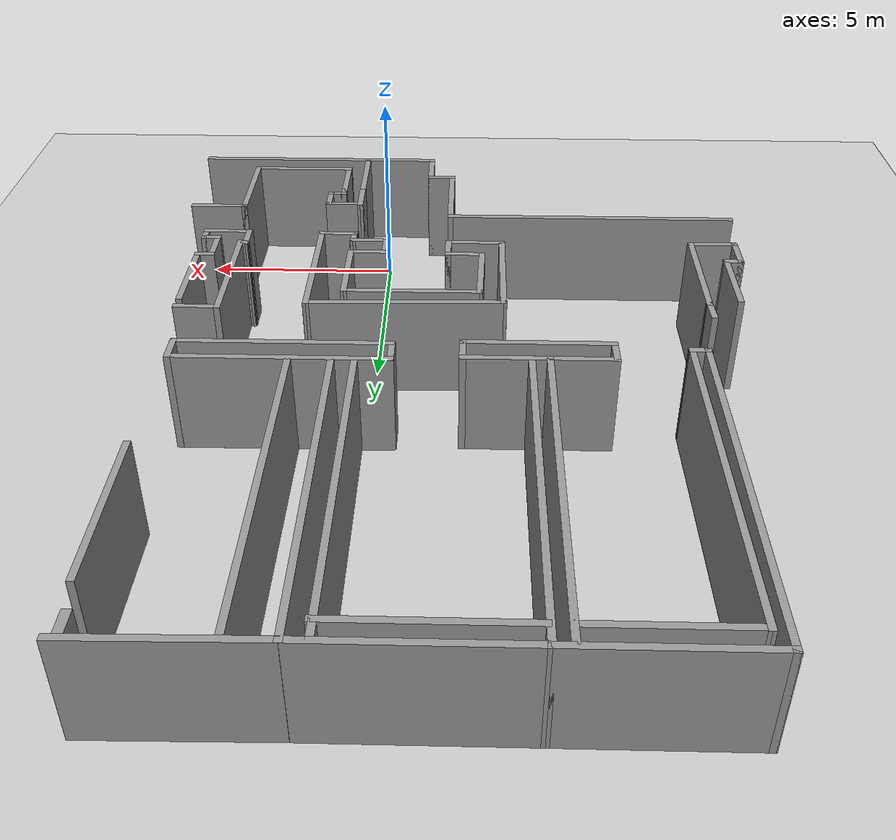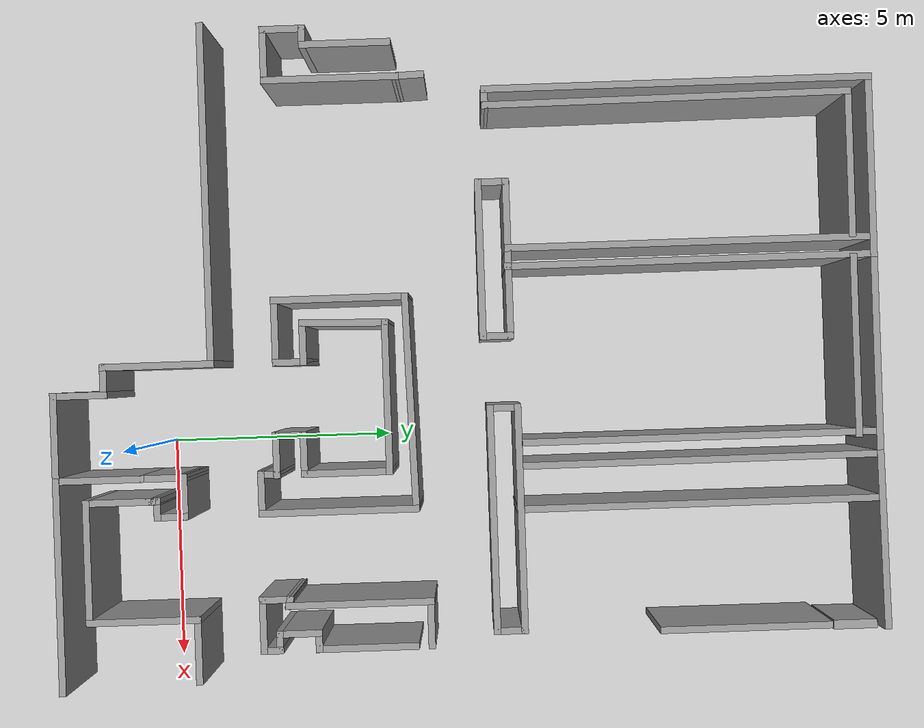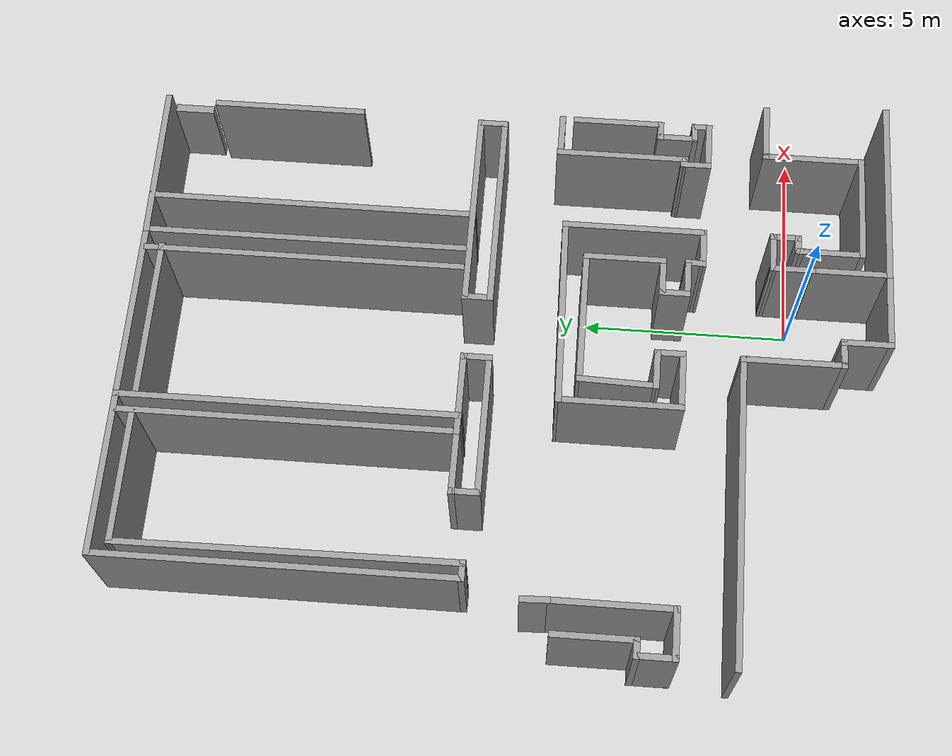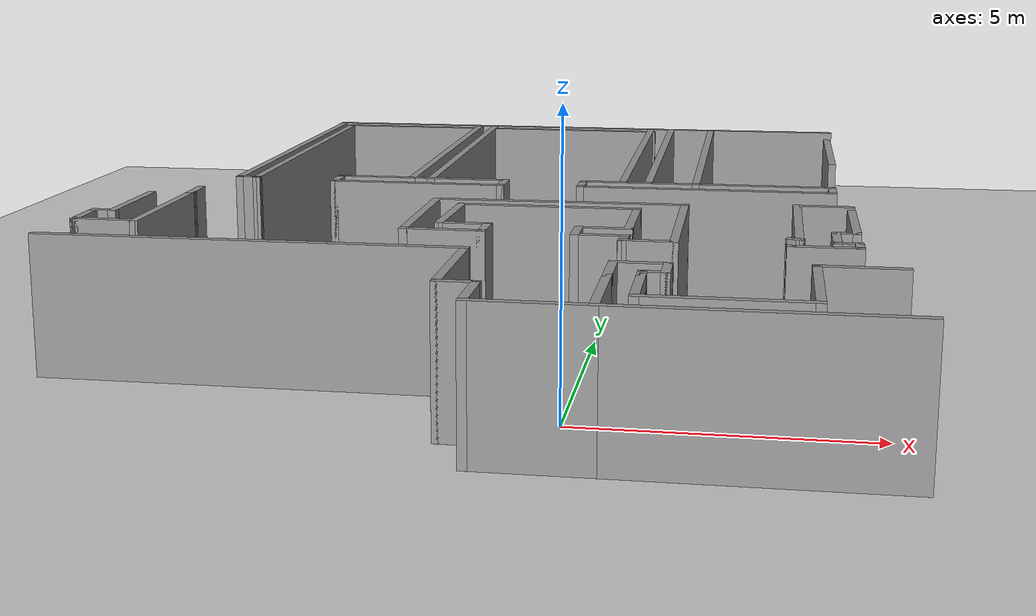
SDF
<sdf version="1.7">
 <world name="default">
  <model name="ground_plane">
   <static>1</static>
   <link name="link">
    <collision name="collision">
     <geometry><plane><normal>0 0 1</normal><size>100 100</size></plane></geometry>
     <surface><friction><ode><mu>100</mu><mu2>50</mu2></ode></friction></surface>
    </collision>
    <visual name="visual">
     <geometry><plane><normal>0 0 1</normal><size>100 100</size></plane></geometry>
     <material>
      <script><uri>file://media/materials/scripts/gazebo.material</uri><name>Gazebo/Grey</name></script>
     </material>
    </visual>
    <velocity_decay><linear>0</linear><angular>0</angular></velocity_decay>
   </link>
  </model>
  <model name="HandMade">
   <pose>-0.902363 5.97176 0 0 -0 0</pose>
   <link name="Door_0">
    <collision name="Door_0_Collision">
     <geometry><box><size>0.957707 0.2 2</size></box></geometry>
     <pose>0 0 1 0 -0 0</pose>
    </collision>
    <visual name="Door_0_Visual">
     <pose>0 0 1 0 -0 0</pose>
     <geometry><box><size>0.957707 0.2 2</size></box></geometry>
     <material>
      <script><uri>file://media/materials/scripts/gazebo.material</uri><name>Gazebo/Grey</name></script>
     </material>
    </visual>
    <pose>5.38126 9.2915 0 0 -0 1.56978</pose>
   </link>
   <link name="Wall_101">
    <collision name="Wall_101_Collision">
     <geometry><box><size>3.90502 0.15 2.5</size></box></geometry>
     <pose>0 0 1.25 0 -0 0</pose>
    </collision>
    <visual name="Wall_101_Visual">
     <pose>0 0 1.25 0 -0 0</pose>
     <geometry><box><size>3.90502 0.15 2.5</size></box></geometry>
     <material>
      <script><uri>file://media/materials/scripts/gazebo.material</uri><name>Gazebo/Grey</name></script>
      <ambient>1 1 1 1</ambient>
     </material>
     <meta><layer>0</layer></meta>
    </visual>
    <pose>3.47392 9.84556 0 0 -0 0.011884</pose>
   </link>
   <link name="Wall_103">
    <collision name="Wall_103_Collision">
     <geometry><box><size>0.5 0.15 2.5</size></box></geometry>
     <pose>0 0 1.25 0 -0 0</pose>
    </collision>
    <visual name="Wall_103_Visual">
     <pose>0 0 1.25 0 -0 0</pose>
     <geometry><box><size>0.5 0.15 2.5</size></box></geometry>
     <material>
      <script><uri>file://media/materials/scripts/gazebo.material</uri><name>Gazebo/Grey</name></script>
      <ambient>1 1 1 1</ambient>
     </material>
     <meta><layer>0</layer></meta>
    </visual>
    <pose>-6.42846 1.47324 0 0 -0 0</pose>
   </link>
   <link name="Wall_104">
    <collision name="Wall_104_Collision">
     <geometry><box><size>8.05295 0.15 2.5</size></box></geometry>
     <pose>0 0 1.25 0 -0 0</pose>
    </collision>
    <visual name="Wall_104_Visual">
     <pose>0 0 1.25 0 -0 0</pose>
     <geometry><box><size>8.05295 0.15 2.5</size></box></geometry>
     <material>
      <script><uri>file://media/materials/scripts/gazebo.material</uri><name>Gazebo/Grey</name></script>
      <ambient>1 1 1 1</ambient>
     </material>
     <meta><layer>0</layer></meta>
    </visual>
    <pose>-6.27869 5.42464 0 0 -0 1.57718</pose>
   </link>
   <link name="Wall_105">
    <collision name="Wall_105_Collision">
     <geometry><box><size>3.25 0.15 2.5</size></box></geometry>
     <pose>0 0 1.25 0 -0 0</pose>
    </collision>
    <visual name="Wall_105_Visual">
     <pose>0 0 1.25 0 -0 0</pose>
     <geometry><box><size>3.25 0.15 2.5</size></box></geometry>
     <material>
      <script><uri>file://media/materials/scripts/gazebo.material</uri><name>Gazebo/Grey</name></script>
      <ambient>1 1 1 1</ambient>
     </material>
     <meta><layer>0</layer></meta>
    </visual>
    <pose>-4.75392 9.37603 0 0 -0 0</pose>
   </link>
   <link name="Wall_107">
    <collision name="Wall_107_Collision">
     <geometry><box><size>4 0.15 2.5</size></box></geometry>
     <pose>0 0 1.25 0 -0 0</pose>
    </collision>
    <visual name="Wall_107_Visual">
     <pose>0 0 1.25 0 -0 0</pose>
     <geometry><box><size>4 0.15 2.5</size></box></geometry>
     <material>
      <script><uri>file://media/materials/scripts/gazebo.material</uri><name>Gazebo/Grey</name></script>
      <ambient>1 1 1 1</ambient>
     </material>
     <meta><layer>0</layer></meta>
    </visual>
    <pose>-0.770391 9.37611 0 0 -0 0</pose>
   </link>
   <link name="Wall_121">
    <collision name="Wall_121_Collision">
     <geometry><box><size>3.75 0.15 2.5</size></box></geometry>
     <pose>0 0 1.25 0 -0 0</pose>
    </collision>
    <visual name="Wall_121_Visual">
     <pose>0 0 1.25 0 -0 0</pose>
     <geometry><box><size>3.75 0.15 2.5</size></box></geometry>
     <material>
      <script><uri>file://media/materials/scripts/gazebo.material</uri><name>Gazebo/Grey</name></script>
      <ambient>1 1 1 1</ambient>
     </material>
     <meta><layer>0</layer></meta>
    </visual>
    <pose>5.28354 6.7915 0 0 -0 1.5708</pose>
   </link>
   <link name="Wall_197">
    <collision name="Wall_197_Collision">
     <geometry><box><size>4.75 0.15 2.5</size></box></geometry>
     <pose>0 0 1.25 0 -0 0</pose>
    </collision>
    <visual name="Wall_197_Visual">
     <pose>0 0 1.25 0 -0 0</pose>
     <geometry><box><size>4.75 0.15 2.5</size></box></geometry>
     <material>
      <script><uri>file://media/materials/scripts/gazebo.material</uri><name>Gazebo/Grey</name></script>
      <ambient>1 1 1 1</ambient>
     </material>
     <meta><layer>0</layer></meta>
    </visual>
    <pose>3.91651 -8.1109 0 0 -0 3.14159</pose>
   </link>
   <link name="Wall_198">
    <collision name="Wall_198_Collision">
     <geometry><box><size>2 0.15 2.5</size></box></geometry>
     <pose>0 0 1.25 0 -0 0</pose>
    </collision>
    <visual name="Wall_198_Visual">
     <pose>0 0 1.25 0 -0 0</pose>
     <geometry><box><size>2 0.15 2.5</size></box></geometry>
     <material>
      <script><uri>file://media/materials/scripts/gazebo.material</uri><name>Gazebo/Grey</name></script>
      <ambient>1 1 1 1</ambient>
     </material>
     <meta><layer>0</layer></meta>
    </visual>
    <pose>1.61651 -7.1859 0 0 -0 1.5708</pose>
   </link>
   <link name="Wall_217">
    <collision name="Wall_217_Collision">
     <geometry><box><size>2.5 0.15 2.5</size></box></geometry>
     <pose>0 0 1.25 0 -0 0</pose>
    </collision>
    <visual name="Wall_217_Visual">
     <pose>0 0 1.25 0 -0 0</pose>
     <geometry><box><size>2.5 0.15 2.5</size></box></geometry>
     <material>
      <script><uri>file://media/materials/scripts/gazebo.material</uri><name>Gazebo/Grey</name></script>
      <ambient>1 1 1 1</ambient>
     </material>
     <meta><layer>0</layer></meta>
    </visual>
    <pose>4.71569 -6.30267 0 0 -0 1.5708</pose>
   </link>
   <link name="Wall_218">
    <collision name="Wall_218_Collision">
     <geometry><box><size>1.5 0.15 2.5</size></box></geometry>
     <pose>0 0 1.25 0 -0 0</pose>
    </collision>
    <visual name="Wall_218_Visual">
     <pose>0 0 1.25 0 -0 0</pose>
     <geometry><box><size>1.5 0.15 2.5</size></box></geometry>
     <material>
      <script><uri>file://media/materials/scripts/gazebo.material</uri><name>Gazebo/Grey</name></script>
      <ambient>1 1 1 1</ambient>
     </material>
     <meta><layer>0</layer></meta>
    </visual>
    <pose>5.39069 -5.12767 0 0 -0 0</pose>
   </link>
   <link name="Wall_225">
    <collision name="Wall_225_Collision">
     <geometry><box><size>2.75 0.15 2.5</size></box></geometry>
     <pose>0 0 1.25 0 -0 0</pose>
    </collision>
    <visual name="Wall_225_Visual">
     <pose>0 0 1.25 0 -0 0</pose>
     <geometry><box><size>2.75 0.15 2.5</size></box></geometry>
     <material>
      <script><uri>file://media/materials/scripts/gazebo.material</uri><name>Gazebo/Grey</name></script>
      <ambient>1 1 1 1</ambient>
     </material>
     <meta><layer>0</layer></meta>
    </visual>
    <pose>3.41569 -7.47766 0 0 -0 3.14159</pose>
   </link>
   <link name="Wall_226">
    <collision name="Wall_226_Collision">
     <geometry><box><size>1.5 0.15 2.5</size></box></geometry>
     <pose>0 0 1.25 0 -0 0</pose>
    </collision>
    <visual name="Wall_226_Visual">
     <pose>0 0 1.25 0 -0 0</pose>
     <geometry><box><size>1.5 0.15 2.5</size></box></geometry>
     <material>
      <script><uri>file://media/materials/scripts/gazebo.material</uri><name>Gazebo/Grey</name></script>
      <ambient>1 1 1 1</ambient>
     </material>
     <meta><layer>0</layer></meta>
    </visual>
    <pose>2.11569 -6.80267 0 0 -0 1.5708</pose>
   </link>
   <link name="Wall_227">
    <collision name="Wall_227_Collision">
     <geometry><box><size>0.25 0.15 2.5</size></box></geometry>
     <pose>0 0 1.25 0 -0 0</pose>
    </collision>
    <visual name="Wall_227_Visual">
     <pose>0 0 1.25 0 -0 0</pose>
     <geometry><box><size>0.25 0.15 2.5</size></box></geometry>
     <material>
      <script><uri>file://media/materials/scripts/gazebo.material</uri><name>Gazebo/Grey</name></script>
      <ambient>1 1 1 1</ambient>
     </material>
     <meta><layer>0</layer></meta>
    </visual>
    <pose>2.11569 -6.07766 0 0 -0 1.5708</pose>
   </link>
   <link name="Wall_228">
    <collision name="Wall_228_Collision">
     <geometry><box><size>0.25 0.15 2.5</size></box></geometry>
     <pose>0 0 1.25 0 -0 0</pose>
    </collision>
    <visual name="Wall_228_Visual">
     <pose>0 0 1.25 0 -0 0</pose>
     <geometry><box><size>0.25 0.15 2.5</size></box></geometry>
     <material>
      <script><uri>file://media/materials/scripts/gazebo.material</uri><name>Gazebo/Grey</name></script>
      <ambient>1 1 1 1</ambient>
     </material>
     <meta><layer>0</layer></meta>
    </visual>
    <pose>2.11569 -5.97767 0 0 -0 1.5708</pose>
   </link>
   <link name="Wall_229">
    <collision name="Wall_229_Collision">
     <geometry><box><size>0.5 0.15 2.5</size></box></geometry>
     <pose>0 0 1.25 0 -0 0</pose>
    </collision>
    <visual name="Wall_229_Visual">
     <pose>0 0 1.25 0 -0 0</pose>
     <geometry><box><size>0.5 0.15 2.5</size></box></geometry>
     <material>
      <script><uri>file://media/materials/scripts/gazebo.material</uri><name>Gazebo/Grey</name></script>
      <ambient>1 1 1 1</ambient>
     </material>
     <meta><layer>0</layer></meta>
    </visual>
    <pose>2.29069 -5.92767 0 0 -0 0</pose>
   </link>
   <link name="Wall_230">
    <collision name="Wall_230_Collision">
     <geometry><box><size>0.75 0.15 2.5</size></box></geometry>
     <pose>0 0 1.25 0 -0 0</pose>
    </collision>
    <visual name="Wall_230_Visual">
     <pose>0 0 1.25 0 -0 0</pose>
     <geometry><box><size>0.75 0.15 2.5</size></box></geometry>
     <material>
      <script><uri>file://media/materials/scripts/gazebo.material</uri><name>Gazebo/Grey</name></script>
      <ambient>1 1 1 1</ambient>
     </material>
     <meta><layer>0</layer></meta>
    </visual>
    <pose>2.46569 -5.62767 0 0 -0 1.5708</pose>
   </link>
   <link name="Wall_231">
    <collision name="Wall_231_Collision">
     <geometry><box><size>1 0.15 2.5</size></box></geometry>
     <pose>0 0 1.25 0 -0 0</pose>
    </collision>
    <visual name="Wall_231_Visual">
     <pose>0 0 1.25 0 -0 0</pose>
     <geometry><box><size>1 0.15 2.5</size></box></geometry>
     <material>
      <script><uri>file://media/materials/scripts/gazebo.material</uri><name>Gazebo/Grey</name></script>
      <ambient>1 1 1 1</ambient>
     </material>
     <meta><layer>0</layer></meta>
    </visual>
    <pose>2.04069 -5.32766 0 0 -0 3.14159</pose>
   </link>
   <link name="Wall_232">
    <collision name="Wall_232_Collision">
     <geometry><box><size>1.08323 0.15 2.5</size></box></geometry>
     <pose>0 0 1.25 0 -0 0</pose>
    </collision>
    <visual name="Wall_232_Visual">
     <pose>0 0 1.25 0 -0 0</pose>
     <geometry><box><size>1.08323 0.15 2.5</size></box></geometry>
     <material>
      <script><uri>file://media/materials/scripts/gazebo.material</uri><name>Gazebo/Grey</name></script>
      <ambient>1 1 1 1</ambient>
     </material>
     <meta><layer>0</layer></meta>
    </visual>
    <pose>1.6161 -5.79428 0 0 -0 -1.56992</pose>
   </link>
   <link name="Wall_235">
    <collision name="Wall_235_Collision">
     <geometry><box><size>2 0.15 2.5</size></box></geometry>
     <pose>0 0 1.25 0 -0 0</pose>
    </collision>
    <visual name="Wall_235_Visual">
     <pose>0 0 1.25 0 -0 0</pose>
     <geometry><box><size>2 0.15 2.5</size></box></geometry>
     <material>
      <script><uri>file://media/materials/scripts/gazebo.material</uri><name>Gazebo/Grey</name></script>
      <ambient>1 1 1 1</ambient>
     </material>
     <meta><layer>0</layer></meta>
    </visual>
    <pose>0.69151 -8.1109 0 0 -0 3.14159</pose>
   </link>
   <link name="Wall_236">
    <collision name="Wall_236_Collision">
     <geometry><box><size>1.25 0.15 2.5</size></box></geometry>
     <pose>0 0 1.25 0 -0 0</pose>
    </collision>
    <visual name="Wall_236_Visual">
     <pose>0 0 1.25 0 -0 0</pose>
     <geometry><box><size>1.25 0.15 2.5</size></box></geometry>
     <material>
      <script><uri>file://media/materials/scripts/gazebo.material</uri><name>Gazebo/Grey</name></script>
      <ambient>1 1 1 1</ambient>
     </material>
     <meta><layer>0</layer></meta>
    </visual>
    <pose>-0.23349 -7.5609 0 0 -0 1.5708</pose>
   </link>
   <link name="Wall_239">
    <collision name="Wall_239_Collision">
     <geometry><box><size>0.75 0.15 2.5</size></box></geometry>
     <pose>0 0 1.25 0 -0 0</pose>
    </collision>
    <visual name="Wall_239_Visual">
     <pose>0 0 1.25 0 -0 0</pose>
     <geometry><box><size>0.75 0.15 2.5</size></box></geometry>
     <material>
      <script><uri>file://media/materials/scripts/gazebo.material</uri><name>Gazebo/Grey</name></script>
      <ambient>1 1 1 1</ambient>
     </material>
     <meta><layer>0</layer></meta>
    </visual>
    <pose>-0.53349 -7.0109 0 0 -0 3.14159</pose>
   </link>
   <link name="Wall_240">
    <collision name="Wall_240_Collision">
     <geometry><box><size>2.5 0.15 2.5</size></box></geometry>
     <pose>0 0 1.25 0 -0 0</pose>
    </collision>
    <visual name="Wall_240_Visual">
     <pose>0 0 1.25 0 -0 0</pose>
     <geometry><box><size>2.5 0.15 2.5</size></box></geometry>
     <material>
      <script><uri>file://media/materials/scripts/gazebo.material</uri><name>Gazebo/Grey</name></script>
      <ambient>1 1 1 1</ambient>
     </material>
     <meta><layer>0</layer></meta>
    </visual>
    <pose>-0.83349 -5.8359 0 0 -0 1.5708</pose>
   </link>
   <link name="Wall_257">
    <collision name="Wall_257_Collision">
     <geometry><box><size>7.5 0.15 2.5</size></box></geometry>
     <pose>0 0 1.25 0 -0 0</pose>
    </collision>
    <visual name="Wall_257_Visual">
     <pose>0 0 1.25 0 -0 0</pose>
     <geometry><box><size>7.5 0.15 2.5</size></box></geometry>
     <material>
      <script><uri>file://media/materials/scripts/gazebo.material</uri><name>Gazebo/Grey</name></script>
      <ambient>1 1 1 1</ambient>
     </material>
     <meta><layer>0</layer></meta>
    </visual>
    <pose>-4.50849 -4.6609 0 0 -0 3.14159</pose>
   </link>
   <link name="Wall_279">
    <collision name="Wall_279_Collision">
     <geometry><box><size>2 0.15 2.5</size></box></geometry>
     <pose>0 0 1.25 0 -0 0</pose>
    </collision>
    <visual name="Wall_279_Visual">
     <pose>0 0 1.25 0 -0 0</pose>
     <geometry><box><size>2 0.15 2.5</size></box></geometry>
     <material>
      <script><uri>file://media/materials/scripts/gazebo.material</uri><name>Gazebo/Grey</name></script>
      <ambient>1 1 1 1</ambient>
     </material>
     <meta><layer>0</layer></meta>
    </visual>
    <pose>-7.70422 -1.5224 0 0 -0 -1.5708</pose>
   </link>
   <link name="Wall_280">
    <collision name="Wall_280_Collision">
     <geometry><box><size>0.5 0.15 2.5</size></box></geometry>
     <pose>0 0 1.25 0 -0 0</pose>
    </collision>
    <visual name="Wall_280_Visual">
     <pose>0 0 1.25 0 -0 0</pose>
     <geometry><box><size>0.5 0.15 2.5</size></box></geometry>
     <material>
      <script><uri>file://media/materials/scripts/gazebo.material</uri><name>Gazebo/Grey</name></script>
      <ambient>1 1 1 1</ambient>
     </material>
     <meta><layer>0</layer></meta>
    </visual>
    <pose>-7.87922 -2.4474 0 0 -0 3.14159</pose>
   </link>
   <link name="Wall_281">
    <collision name="Wall_281_Collision">
     <geometry><box><size>1 0.15 2.5</size></box></geometry>
     <pose>0 0 1.25 0 -0 0</pose>
    </collision>
    <visual name="Wall_281_Visual">
     <pose>0 0 1.25 0 -0 0</pose>
     <geometry><box><size>1 0.15 2.5</size></box></geometry>
     <material>
      <script><uri>file://media/materials/scripts/gazebo.material</uri><name>Gazebo/Grey</name></script>
      <ambient>1 1 1 1</ambient>
     </material>
     <meta><layer>0</layer></meta>
    </visual>
    <pose>-8.05422 -2.8724 0 0 -0 -1.5708</pose>
   </link>
   <link name="Wall_282">
    <collision name="Wall_282_Collision">
     <geometry><box><size>1.25 0.15 2.5</size></box></geometry>
     <pose>0 0 1.25 0 -0 0</pose>
    </collision>
    <visual name="Wall_282_Visual">
     <pose>0 0 1.25 0 -0 0</pose>
     <geometry><box><size>1.25 0.15 2.5</size></box></geometry>
     <material>
      <script><uri>file://media/materials/scripts/gazebo.material</uri><name>Gazebo/Grey</name></script>
      <ambient>1 1 1 1</ambient>
     </material>
     <meta><layer>0</layer></meta>
    </visual>
    <pose>-7.50422 -3.2974 0 0 -0 0</pose>
   </link>
   <link name="Wall_283">
    <collision name="Wall_283_Collision">
     <geometry><box><size>3 0.15 2.5</size></box></geometry>
     <pose>0 0 1.25 0 -0 0</pose>
    </collision>
    <visual name="Wall_283_Visual">
     <pose>0 0 1.25 0 -0 0</pose>
     <geometry><box><size>3 0.15 2.5</size></box></geometry>
     <material>
      <script><uri>file://media/materials/scripts/gazebo.material</uri><name>Gazebo/Grey</name></script>
      <ambient>1 1 1 1</ambient>
     </material>
     <meta><layer>0</layer></meta>
    </visual>
    <pose>-6.95422 -1.8724 0 0 -0 1.5708</pose>
   </link>
   <link name="Wall_286">
    <collision name="Wall_286_Collision">
     <geometry><box><size>0.701275 0.15 2.5</size></box></geometry>
     <pose>0 0 1.25 0 -0 0</pose>
    </collision>
    <visual name="Wall_286_Visual">
     <pose>0 0 1.25 0 -0 0</pose>
     <geometry><box><size>0.701275 0.15 2.5</size></box></geometry>
     <material>
      <script><uri>file://media/materials/scripts/gazebo.material</uri><name>Gazebo/Grey</name></script>
      <ambient>1 1 1 1</ambient>
     </material>
     <meta><layer>0</layer></meta>
    </visual>
    <pose>-6.96364 -0.171926 0 0 -0 -1.53662</pose>
   </link>
   <link name="Wall_318">
    <collision name="Wall_318_Collision">
     <geometry><box><size>3.38314 0.15 2.5</size></box></geometry>
     <pose>0 0 1.25 0 -0 0</pose>
    </collision>
    <visual name="Wall_318_Visual">
     <pose>0 0 1.25 0 -0 0</pose>
     <geometry><box><size>3.38314 0.15 2.5</size></box></geometry>
     <material>
      <script><uri>file://media/materials/scripts/gazebo.material</uri><name>Gazebo/Grey</name></script>
      <ambient>1 1 1 1</ambient>
     </material>
     <meta><layer>0</layer></meta>
    </visual>
    <pose>0.010175 -0.852323 0 0 -0 0.001284</pose>
   </link>
   <link name="Wall_324">
    <collision name="Wall_324_Collision">
     <geometry><box><size>1 0.15 2.5</size></box></geometry>
     <pose>0 0 1.25 0 -0 0</pose>
    </collision>
    <visual name="Wall_324_Visual">
     <pose>0 0 1.25 0 -0 0</pose>
     <geometry><box><size>1 0.15 2.5</size></box></geometry>
     <material>
      <script><uri>file://media/materials/scripts/gazebo.material</uri><name>Gazebo/Grey</name></script>
      <ambient>1 1 1 1</ambient>
     </material>
     <meta><layer>0</layer></meta>
    </visual>
    <pose>2.03199 -3.64863 0 0 -0 0</pose>
   </link>
   <link name="Wall_325">
    <collision name="Wall_325_Collision">
     <geometry><box><size>3.5 0.15 2.5</size></box></geometry>
     <pose>0 0 1.25 0 -0 0</pose>
    </collision>
    <visual name="Wall_325_Visual">
     <pose>0 0 1.25 0 -0 0</pose>
     <geometry><box><size>3.5 0.15 2.5</size></box></geometry>
     <material>
      <script><uri>file://media/materials/scripts/gazebo.material</uri><name>Gazebo/Grey</name></script>
      <ambient>1 1 1 1</ambient>
     </material>
     <meta><layer>0</layer></meta>
    </visual>
    <pose>2.45699 -1.97363 0 0 -0 1.5708</pose>
   </link>
   <link name="Wall_326">
    <collision name="Wall_326_Collision">
     <geometry><box><size>4.77211 0.15 2.5</size></box></geometry>
     <pose>0 0 1.25 0 -0 0</pose>
    </collision>
    <visual name="Wall_326_Visual">
     <pose>0 0 1.25 0 -0 0</pose>
     <geometry><box><size>4.77211 0.15 2.5</size></box></geometry>
     <material>
      <script><uri>file://media/materials/scripts/gazebo.material</uri><name>Gazebo/Grey</name></script>
      <ambient>1 1 1 1</ambient>
     </material>
     <meta><layer>0</layer></meta>
    </visual>
    <pose>0.146481 -0.348817 0 0 -0 -3.11988</pose>
   </link>
   <link name="Wall_327">
    <collision name="Wall_327_Collision">
     <geometry><box><size>3 0.15 2.5</size></box></geometry>
     <pose>0 0 1.25 0 -0 0</pose>
    </collision>
    <visual name="Wall_327_Visual">
     <pose>0 0 1.25 0 -0 0</pose>
     <geometry><box><size>3 0.15 2.5</size></box></geometry>
     <material>
      <script><uri>file://media/materials/scripts/gazebo.material</uri><name>Gazebo/Grey</name></script>
      <ambient>1 1 1 1</ambient>
     </material>
     <meta><layer>0</layer></meta>
    </visual>
    <pose>-2.16403 -1.824 0 0 -0 -1.5708</pose>
   </link>
   <link name="Wall_330">
    <collision name="Wall_330_Collision">
     <geometry><box><size>2 0.15 2.5</size></box></geometry>
     <pose>0 0 1.25 0 -0 0</pose>
    </collision>
    <visual name="Wall_330_Visual">
     <pose>0 0 1.25 0 -0 0</pose>
     <geometry><box><size>2 0.15 2.5</size></box></geometry>
     <material>
      <script><uri>file://media/materials/scripts/gazebo.material</uri><name>Gazebo/Grey</name></script>
      <ambient>1 1 1 1</ambient>
     </material>
     <meta><layer>0</layer></meta>
    </visual>
    <pose>1.62675 -1.77525 0 0 -0 -1.5708</pose>
   </link>
   <link name="Wall_331">
    <collision name="Wall_331_Collision">
     <geometry><box><size>1 0.15 2.5</size></box></geometry>
     <pose>0 0 1.25 0 -0 0</pose>
    </collision>
    <visual name="Wall_331_Visual">
     <pose>0 0 1.25 0 -0 0</pose>
     <geometry><box><size>1 0.15 2.5</size></box></geometry>
     <material>
      <script><uri>file://media/materials/scripts/gazebo.material</uri><name>Gazebo/Grey</name></script>
      <ambient>1 1 1 1</ambient>
     </material>
     <meta><layer>0</layer></meta>
    </visual>
    <pose>1.20175 -2.70025 0 0 -0 3.14159</pose>
   </link>
   <link name="Wall_332">
    <collision name="Wall_332_Collision">
     <geometry><box><size>0.75 0.15 2.5</size></box></geometry>
     <pose>0 0 1.25 0 -0 0</pose>
    </collision>
    <visual name="Wall_332_Visual">
     <pose>0 0 1.25 0 -0 0</pose>
     <geometry><box><size>0.75 0.15 2.5</size></box></geometry>
     <material>
      <script><uri>file://media/materials/scripts/gazebo.material</uri><name>Gazebo/Grey</name></script>
      <ambient>1 1 1 1</ambient>
     </material>
     <meta><layer>0</layer></meta>
    </visual>
    <pose>0.776746 -3.00025 0 0 -0 -1.5708</pose>
   </link>
   <link name="Wall_333">
    <collision name="Wall_333_Collision">
     <geometry><box><size>1 0.15 2.5</size></box></geometry>
     <pose>0 0 1.25 0 -0 0</pose>
    </collision>
    <visual name="Wall_333_Visual">
     <pose>0 0 1.25 0 -0 0</pose>
     <geometry><box><size>1 0.15 2.5</size></box></geometry>
     <material>
      <script><uri>file://media/materials/scripts/gazebo.material</uri><name>Gazebo/Grey</name></script>
      <ambient>1 1 1 1</ambient>
     </material>
     <meta><layer>0</layer></meta>
    </visual>
    <pose>1.20175 -3.30025 0 0 -0 0</pose>
   </link>
   <link name="Wall_334">
    <collision name="Wall_334_Collision">
     <geometry><box><size>0.498946 0.15 2.5</size></box></geometry>
     <pose>0 0 1.25 0 -0 0</pose>
    </collision>
    <visual name="Wall_334_Visual">
     <pose>0 0 1.25 0 -0 0</pose>
     <geometry><box><size>0.498946 0.15 2.5</size></box></geometry>
     <material>
      <script><uri>file://media/materials/scripts/gazebo.material</uri><name>Gazebo/Grey</name></script>
      <ambient>1 1 1 1</ambient>
     </material>
     <meta><layer>0</layer></meta>
    </visual>
    <pose>1.61687 -3.47444 0 0 -0 -1.62744</pose>
   </link>
   <link name="Wall_347">
    <collision name="Wall_347_Collision">
     <geometry><box><size>1.94268 0.15 2.5</size></box></geometry>
     <pose>0 0 1.25 0 -0 0</pose>
    </collision>
    <visual name="Wall_347_Visual">
     <pose>0 0 1.25 0 -0 0</pose>
     <geometry><box><size>1.94268 0.15 2.5</size></box></geometry>
     <material>
      <script><uri>file://media/materials/scripts/gazebo.material</uri><name>Gazebo/Grey</name></script>
      <ambient>1 1 1 1</ambient>
     </material>
     <meta><layer>0</layer></meta>
    </visual>
    <pose>-1.63388 -1.75032 0 0 -0 1.54013</pose>
   </link>
   <link name="Wall_349">
    <collision name="Wall_349_Collision">
     <geometry><box><size>1 0.15 2.5</size></box></geometry>
     <pose>0 0 1.25 0 -0 0</pose>
    </collision>
    <visual name="Wall_349_Visual">
     <pose>0 0 1.25 0 -0 0</pose>
     <geometry><box><size>1 0.15 2.5</size></box></geometry>
     <material>
      <script><uri>file://media/materials/scripts/gazebo.material</uri><name>Gazebo/Grey</name></script>
      <ambient>1 1 1 1</ambient>
     </material>
     <meta><layer>0</layer></meta>
    </visual>
    <pose>-1.23637 -2.64624 0 0 -0 0</pose>
   </link>
   <link name="Wall_350">
    <collision name="Wall_350_Collision">
     <geometry><box><size>0.75 0.15 2.5</size></box></geometry>
     <pose>0 0 1.25 0 -0 0</pose>
    </collision>
    <visual name="Wall_350_Visual">
     <pose>0 0 1.25 0 -0 0</pose>
     <geometry><box><size>0.75 0.15 2.5</size></box></geometry>
     <material>
      <script><uri>file://media/materials/scripts/gazebo.material</uri><name>Gazebo/Grey</name></script>
      <ambient>1 1 1 1</ambient>
     </material>
     <meta><layer>0</layer></meta>
    </visual>
    <pose>-0.811367 -2.94624 0 0 -0 -1.5708</pose>
   </link>
   <link name="Wall_351">
    <collision name="Wall_351_Collision">
     <geometry><box><size>1.5 0.15 2.5</size></box></geometry>
     <pose>0 0 1.25 0 -0 0</pose>
    </collision>
    <visual name="Wall_351_Visual">
     <pose>0 0 1.25 0 -0 0</pose>
     <geometry><box><size>1.5 0.15 2.5</size></box></geometry>
     <material>
      <script><uri>file://media/materials/scripts/gazebo.material</uri><name>Gazebo/Grey</name></script>
      <ambient>1 1 1 1</ambient>
     </material>
     <meta><layer>0</layer></meta>
    </visual>
    <pose>-1.48637 -3.24624 0 0 -0 3.14159</pose>
   </link>
   <link name="Wall_354">
    <collision name="Wall_354_Collision">
     <geometry><box><size>3.25 0.15 2.5</size></box></geometry>
     <pose>0 0 1.25 0 -0 0</pose>
    </collision>
    <visual name="Wall_354_Visual">
     <pose>0 0 1.25 0 -0 0</pose>
     <geometry><box><size>3.25 0.15 2.5</size></box></geometry>
     <material>
      <script><uri>file://media/materials/scripts/gazebo.material</uri><name>Gazebo/Grey</name></script>
      <ambient>1 1 1 1</ambient>
     </material>
     <meta><layer>0</layer></meta>
    </visual>
    <pose>4.48338 -1.58974 0 0 -0 -1.5708</pose>
   </link>
   <link name="Wall_355">
    <collision name="Wall_355_Collision">
     <geometry><box><size>0.294585 0.15 2.5</size></box></geometry>
     <pose>0 0 1.25 0 -0 0</pose>
    </collision>
    <visual name="Wall_355_Visual">
     <pose>0 0 1.25 0 -0 0</pose>
     <geometry><box><size>0.294585 0.15 2.5</size></box></geometry>
     <material>
      <script><uri>file://media/materials/scripts/gazebo.material</uri><name>Gazebo/Grey</name></script>
      <ambient>1 1 1 1</ambient>
     </material>
     <meta><layer>0</layer></meta>
    </visual>
    <pose>4.41332 -3.12191 0 0 -0 2.89238</pose>
   </link>
   <link name="Wall_356">
    <collision name="Wall_356_Collision">
     <geometry><box><size>0.75 0.15 2.5</size></box></geometry>
     <pose>0 0 1.25 0 -0 0</pose>
    </collision>
    <visual name="Wall_356_Visual">
     <pose>0 0 1.25 0 -0 0</pose>
     <geometry><box><size>0.75 0.15 2.5</size></box></geometry>
     <material>
      <script><uri>file://media/materials/scripts/gazebo.material</uri><name>Gazebo/Grey</name></script>
      <ambient>1 1 1 1</ambient>
     </material>
     <meta><layer>0</layer></meta>
    </visual>
    <pose>4.34326 -3.40408 0 0 -0 -1.5708</pose>
   </link>
   <link name="Wall_357">
    <collision name="Wall_357_Collision">
     <geometry><box><size>1.25 0.15 2.5</size></box></geometry>
     <pose>0 0 1.25 0 -0 0</pose>
    </collision>
    <visual name="Wall_357_Visual">
     <pose>0 0 1.25 0 -0 0</pose>
     <geometry><box><size>1.25 0.15 2.5</size></box></geometry>
     <material>
      <script><uri>file://media/materials/scripts/gazebo.material</uri><name>Gazebo/Grey</name></script>
      <ambient>1 1 1 1</ambient>
     </material>
     <meta><layer>0</layer></meta>
    </visual>
    <pose>4.89326 -3.70409 0 0 -0 0</pose>
   </link>
   <link name="Wall_358">
    <collision name="Wall_358_Collision">
     <geometry><box><size>0.5 0.15 2.5</size></box></geometry>
     <pose>0 0 1.25 0 -0 0</pose>
    </collision>
    <visual name="Wall_358_Visual">
     <pose>0 0 1.25 0 -0 0</pose>
     <geometry><box><size>0.5 0.15 2.5</size></box></geometry>
     <material>
      <script><uri>file://media/materials/scripts/gazebo.material</uri><name>Gazebo/Grey</name></script>
      <ambient>1 1 1 1</ambient>
     </material>
     <meta><layer>0</layer></meta>
    </visual>
    <pose>5.44326 -3.52908 0 0 -0 1.5708</pose>
   </link>
   <link name="Wall_359">
    <collision name="Wall_359_Collision">
     <geometry><box><size>0.5 0.15 2.5</size></box></geometry>
     <pose>0 0 1.25 0 -0 0</pose>
    </collision>
    <visual name="Wall_359_Visual">
     <pose>0 0 1.25 0 -0 0</pose>
     <geometry><box><size>0.5 0.15 2.5</size></box></geometry>
     <material>
      <script><uri>file://media/materials/scripts/gazebo.material</uri><name>Gazebo/Grey</name></script>
      <ambient>1 1 1 1</ambient>
     </material>
     <meta><layer>0</layer></meta>
    </visual>
    <pose>5.26826 -3.35408 0 0 -0 3.14159</pose>
   </link>
   <link name="Wall_360">
    <collision name="Wall_360_Collision">
     <geometry><box><size>1 0.15 2.5</size></box></geometry>
     <pose>0 0 1.25 0 -0 0</pose>
    </collision>
    <visual name="Wall_360_Visual">
     <pose>0 0 1.25 0 -0 0</pose>
     <geometry><box><size>1 0.15 2.5</size></box></geometry>
     <material>
      <script><uri>file://media/materials/scripts/gazebo.material</uri><name>Gazebo/Grey</name></script>
      <ambient>1 1 1 1</ambient>
     </material>
     <meta><layer>0</layer></meta>
    </visual>
    <pose>5.09326 -2.92909 0 0 -0 1.5708</pose>
   </link>
   <link name="Wall_361">
    <collision name="Wall_361_Collision">
     <geometry><box><size>0.5 0.15 2.5</size></box></geometry>
     <pose>0 0 1.25 0 -0 0</pose>
    </collision>
    <visual name="Wall_361_Visual">
     <pose>0 0 1.25 0 -0 0</pose>
     <geometry><box><size>0.5 0.15 2.5</size></box></geometry>
     <material>
      <script><uri>file://media/materials/scripts/gazebo.material</uri><name>Gazebo/Grey</name></script>
      <ambient>1 1 1 1</ambient>
     </material>
     <meta><layer>0</layer></meta>
    </visual>
    <pose>5.26826 -2.50408 0 0 -0 0</pose>
   </link>
   <link name="Wall_362">
    <collision name="Wall_362_Collision">
     <geometry><box><size>2.25 0.15 2.5</size></box></geometry>
     <pose>0 0 1.25 0 -0 0</pose>
    </collision>
    <visual name="Wall_362_Visual">
     <pose>0 0 1.25 0 -0 0</pose>
     <geometry><box><size>2.25 0.15 2.5</size></box></geometry>
     <material>
      <script><uri>file://media/materials/scripts/gazebo.material</uri><name>Gazebo/Grey</name></script>
      <ambient>1 1 1 1</ambient>
     </material>
     <meta><layer>0</layer></meta>
    </visual>
    <pose>5.44326 -1.45409 0 0 -0 1.5708</pose>
   </link>
   <link name="Wall_364">
    <collision name="Wall_364_Collision">
     <geometry><box><size>1 0.15 2.5</size></box></geometry>
     <pose>0 0 1.25 0 -0 0</pose>
    </collision>
    <visual name="Wall_364_Visual">
     <pose>0 0 1.25 0 -0 0</pose>
     <geometry><box><size>1 0.15 2.5</size></box></geometry>
     <material>
      <script><uri>file://media/materials/scripts/gazebo.material</uri><name>Gazebo/Grey</name></script>
      <ambient>1 1 1 1</ambient>
     </material>
     <meta><layer>0</layer></meta>
    </visual>
    <pose>5.01826 -0.054085 0 0 -0 3.14159</pose>
   </link>
   <link name="Wall_73">
    <collision name="Wall_73_Collision">
     <geometry><box><size>8.5 0.15 2.5</size></box></geometry>
     <pose>0 0 1.25 0 -0 0</pose>
    </collision>
    <visual name="Wall_73_Visual">
     <pose>0 0 1.25 0 -0 0</pose>
     <geometry><box><size>8.5 0.15 2.5</size></box></geometry>
     <material>
      <script><uri>file://media/materials/scripts/gazebo.material</uri><name>Gazebo/Grey</name></script>
      <ambient>1 1 1 1</ambient>
     </material>
     <meta><layer>0</layer></meta>
    </visual>
    <pose>-6.60346 5.64824 0 0 -0 1.5708</pose>
   </link>
   <link name="Wall_74">
    <collision name="Wall_74_Collision">
     <geometry><box><size>4 0.15 2.5</size></box></geometry>
     <pose>0 0 1.25 0 -0 0</pose>
    </collision>
    <visual name="Wall_74_Visual">
     <pose>0 0 1.25 0 -0 0</pose>
     <geometry><box><size>4 0.15 2.5</size></box></geometry>
     <material>
      <script><uri>file://media/materials/scripts/gazebo.material</uri><name>Gazebo/Grey</name></script>
      <ambient>1 1 1 1</ambient>
     </material>
     <meta><layer>0</layer></meta>
    </visual>
    <pose>-4.67846 9.82324 0 0 -0 0</pose>
   </link>
   <link name="Wall_75">
    <collision name="Wall_75_Collision">
     <geometry><box><size>8.11777 0.15 2.5</size></box></geometry>
     <pose>0 0 1.25 0 -0 0</pose>
    </collision>
    <visual name="Wall_75_Visual">
     <pose>0 0 1.25 0 -0 0</pose>
     <geometry><box><size>8.11777 0.15 2.5</size></box></geometry>
     <material>
      <script><uri>file://media/materials/scripts/gazebo.material</uri><name>Gazebo/Grey</name></script>
      <ambient>1 1 1 1</ambient>
     </material>
     <meta><layer>0</layer></meta>
    </visual>
    <pose>-2.74505 5.83937 0 0 -0 -1.56869</pose>
   </link>
   <link name="Wall_77">
    <collision name="Wall_77_Collision">
     <geometry><box><size>1.59861 0.15 2.5</size></box></geometry>
     <pose>0 0 1.25 0 -0 0</pose>
    </collision>
    <visual name="Wall_77_Visual">
     <pose>0 0 1.25 0 -0 0</pose>
     <geometry><box><size>1.59861 0.15 2.5</size></box></geometry>
     <material>
      <script><uri>file://media/materials/scripts/gazebo.material</uri><name>Gazebo/Grey</name></script>
      <ambient>1 1 1 1</ambient>
     </material>
     <meta><layer>0</layer></meta>
    </visual>
    <pose>-3.85706 1.87366 0 0 -0 3.14159</pose>
   </link>
   <link name="Wall_78">
    <collision name="Wall_78_Collision">
     <geometry><box><size>0.75 0.15 2.5</size></box></geometry>
     <pose>0 0 1.25 0 -0 0</pose>
    </collision>
    <visual name="Wall_78_Visual">
     <pose>0 0 1.25 0 -0 0</pose>
     <geometry><box><size>0.75 0.15 2.5</size></box></geometry>
     <material>
      <script><uri>file://media/materials/scripts/gazebo.material</uri><name>Gazebo/Grey</name></script>
      <ambient>1 1 1 1</ambient>
     </material>
     <meta><layer>0</layer></meta>
    </visual>
    <pose>-4.58136 1.57366 0 0 -0 -1.5708</pose>
   </link>
   <link name="Wall_79">
    <collision name="Wall_79_Collision">
     <geometry><box><size>3.5 0.15 2.5</size></box></geometry>
     <pose>0 0 1.25 0 -0 0</pose>
    </collision>
    <visual name="Wall_79_Visual">
     <pose>0 0 1.25 0 -0 0</pose>
     <geometry><box><size>3.5 0.15 2.5</size></box></geometry>
     <material>
      <script><uri>file://media/materials/scripts/gazebo.material</uri><name>Gazebo/Grey</name></script>
      <ambient>1 1 1 1</ambient>
     </material>
     <meta><layer>0</layer></meta>
    </visual>
    <pose>-2.90636 1.27366 0 0 -0 0</pose>
   </link>
   <link name="Wall_80">
    <collision name="Wall_80_Collision">
     <geometry><box><size>0.75 0.15 2.5</size></box></geometry>
     <pose>0 0 1.25 0 -0 0</pose>
    </collision>
    <visual name="Wall_80_Visual">
     <pose>0 0 1.25 0 -0 0</pose>
     <geometry><box><size>0.75 0.15 2.5</size></box></geometry>
     <material>
      <script><uri>file://media/materials/scripts/gazebo.material</uri><name>Gazebo/Grey</name></script>
      <ambient>1 1 1 1</ambient>
     </material>
     <meta><layer>0</layer></meta>
    </visual>
    <pose>-1.23136 1.57366 0 0 -0 1.5708</pose>
   </link>
   <link name="Wall_81">
    <collision name="Wall_81_Collision">
     <geometry><box><size>2.05139 0.15 2.5</size></box></geometry>
     <pose>0 0 1.25 0 -0 0</pose>
    </collision>
    <visual name="Wall_81_Visual">
     <pose>0 0 1.25 0 -0 0</pose>
     <geometry><box><size>2.05139 0.15 2.5</size></box></geometry>
     <material>
      <script><uri>file://media/materials/scripts/gazebo.material</uri><name>Gazebo/Grey</name></script>
      <ambient>1 1 1 1</ambient>
     </material>
     <meta><layer>0</layer></meta>
    </visual>
    <pose>-2.18206 1.87366 0 0 -0 3.14159</pose>
   </link>
   <link name="Wall_83">
    <collision name="Wall_83_Collision">
     <geometry><box><size>0.75 0.15 2.5</size></box></geometry>
     <pose>0 0 1.25 0 -0 0</pose>
    </collision>
    <visual name="Wall_83_Visual">
     <pose>0 0 1.25 0 -0 0</pose>
     <geometry><box><size>0.75 0.15 2.5</size></box></geometry>
     <material>
      <script><uri>file://media/materials/scripts/gazebo.material</uri><name>Gazebo/Grey</name></script>
      <ambient>1 1 1 1</ambient>
     </material>
     <meta><layer>0</layer></meta>
    </visual>
    <pose>0.332505 1.67459 0 0 -0 -1.5708</pose>
   </link>
   <link name="Wall_84">
    <collision name="Wall_84_Collision">
     <geometry><box><size>5 0.15 2.5</size></box></geometry>
     <pose>0 0 1.25 0 -0 0</pose>
    </collision>
    <visual name="Wall_84_Visual">
     <pose>0 0 1.25 0 -0 0</pose>
     <geometry><box><size>5 0.15 2.5</size></box></geometry>
     <material>
      <script><uri>file://media/materials/scripts/gazebo.material</uri><name>Gazebo/Grey</name></script>
      <ambient>1 1 1 1</ambient>
     </material>
     <meta><layer>0</layer></meta>
    </visual>
    <pose>2.75751 1.37459 0 0 -0 0</pose>
   </link>
   <link name="Wall_85">
    <collision name="Wall_85_Collision">
     <geometry><box><size>0.75 0.15 2.5</size></box></geometry>
     <pose>0 0 1.25 0 -0 0</pose>
    </collision>
    <visual name="Wall_85_Visual">
     <pose>0 0 1.25 0 -0 0</pose>
     <geometry><box><size>0.75 0.15 2.5</size></box></geometry>
     <material>
      <script><uri>file://media/materials/scripts/gazebo.material</uri><name>Gazebo/Grey</name></script>
      <ambient>1 1 1 1</ambient>
     </material>
     <meta><layer>0</layer></meta>
    </visual>
    <pose>5.1825 1.67459 0 0 -0 1.5708</pose>
   </link>
   <link name="Wall_86">
    <collision name="Wall_86_Collision">
     <geometry><box><size>5 0.15 2.5</size></box></geometry>
     <pose>0 0 1.25 0 -0 0</pose>
    </collision>
    <visual name="Wall_86_Visual">
     <pose>0 0 1.25 0 -0 0</pose>
     <geometry><box><size>5 0.15 2.5</size></box></geometry>
     <material>
      <script><uri>file://media/materials/scripts/gazebo.material</uri><name>Gazebo/Grey</name></script>
      <ambient>1 1 1 1</ambient>
     </material>
     <meta><layer>0</layer></meta>
    </visual>
    <pose>2.75751 1.97459 0 0 -0 3.14159</pose>
   </link>
   <link name="Wall_88">
    <collision name="Wall_88_Collision">
     <geometry><box><size>4.5 0.15 2.5</size></box></geometry>
     <pose>0 0 1.25 0 -0 0</pose>
    </collision>
    <visual name="Wall_88_Visual">
     <pose>0 0 1.25 0 -0 0</pose>
     <geometry><box><size>4.5 0.15 2.5</size></box></geometry>
     <material>
      <script><uri>file://media/materials/scripts/gazebo.material</uri><name>Gazebo/Grey</name></script>
      <ambient>1 1 1 1</ambient>
     </material>
     <meta><layer>0</layer></meta>
    </visual>
    <pose>-0.578459 9.82324 0 0 -0 0</pose>
   </link>
   <link name="Wall_89">
    <collision name="Wall_89_Collision">
     <geometry><box><size>7.86777 0.15 2.5</size></box></geometry>
     <pose>0 0 1.25 0 -0 0</pose>
    </collision>
    <visual name="Wall_89_Visual">
     <pose>0 0 1.25 0 -0 0</pose>
     <geometry><box><size>7.86777 0.15 2.5</size></box></geometry>
     <material>
      <script><uri>file://media/materials/scripts/gazebo.material</uri><name>Gazebo/Grey</name></script>
      <ambient>1 1 1 1</ambient>
     </material>
     <meta><layer>0</layer></meta>
    </visual>
    <pose>1.60495 5.96437 0 0 -0 -1.56862</pose>
   </link>
   <link name="Wall_91">
    <collision name="Wall_91_Collision">
     <geometry><box><size>8 0.15 2.5</size></box></geometry>
     <pose>0 0 1.25 0 -0 0</pose>
    </collision>
    <visual name="Wall_91_Visual">
     <pose>0 0 1.25 0 -0 0</pose>
     <geometry><box><size>8 0.15 2.5</size></box></geometry>
     <material>
      <script><uri>file://media/materials/scripts/gazebo.material</uri><name>Gazebo/Grey</name></script>
      <ambient>1 1 1 1</ambient>
     </material>
     <meta><layer>0</layer></meta>
    </visual>
    <pose>2.55296 5.88847 0 0 -0 -1.5708</pose>
   </link>
   <link name="Wall_97">
    <collision name="Wall_97_Collision">
     <geometry><box><size>8 0.15 2.5</size></box></geometry>
     <pose>0 0 1.25 0 -0 0</pose>
    </collision>
    <visual name="Wall_97_Visual">
     <pose>0 0 1.25 0 -0 0</pose>
     <geometry><box><size>8 0.15 2.5</size></box></geometry>
     <material>
      <script><uri>file://media/materials/scripts/gazebo.material</uri><name>Gazebo/Grey</name></script>
      <ambient>1 1 1 1</ambient>
     </material>
     <meta><layer>0</layer></meta>
    </visual>
    <pose>-3.13275 5.79866 0 0 -0 1.5708</pose>
   </link>
   <link name="Wall_99">
    <collision name="Wall_99_Collision">
     <geometry><box><size>7.75 0.15 2.5</size></box></geometry>
     <pose>0 0 1.25 0 -0 0</pose>
    </collision>
    <visual name="Wall_99_Visual">
     <pose>0 0 1.25 0 -0 0</pose>
     <geometry><box><size>7.75 0.15 2.5</size></box></geometry>
     <material>
      <script><uri>file://media/materials/scripts/gazebo.material</uri><name>Gazebo/Grey</name></script>
      <ambient>1 1 1 1</ambient>
     </material>
     <meta><layer>0</layer></meta>
    </visual>
    <pose>1.1063 5.92936 0 0 -0 -1.5708</pose>
   </link>
   <static>1</static>
  </model>
 </world>
</sdf>
